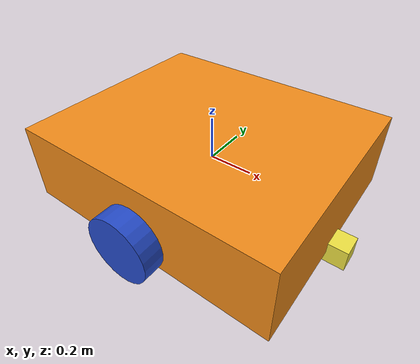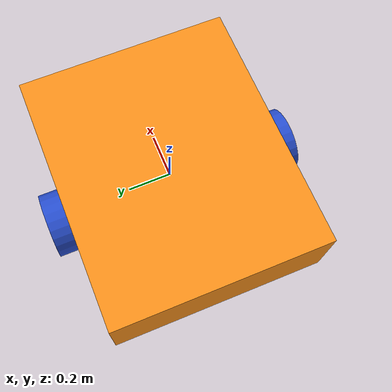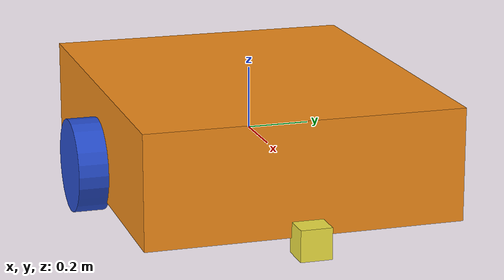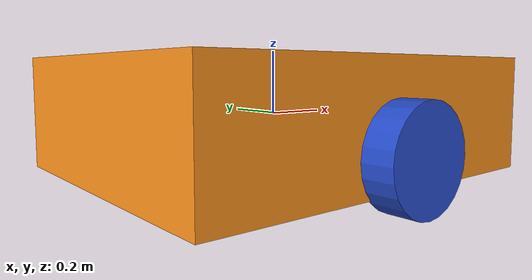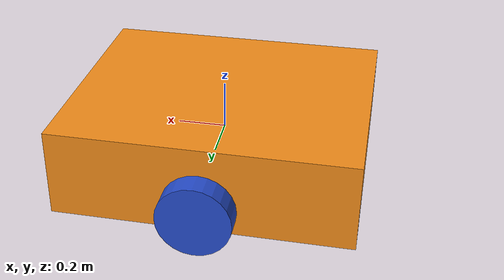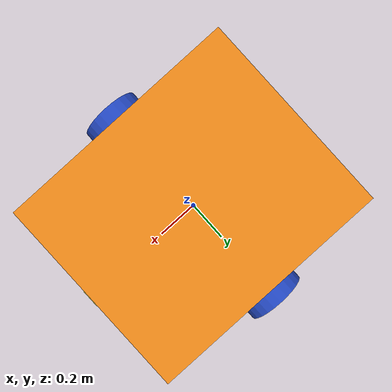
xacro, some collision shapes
<?xml version='1.0'?>

<robot name="myrobot" xmlns:xacro="http://www.ros.org/wiki/xacro">

  <xacro:property name="cameraSize" value="0.05"/>
  <xacro:property name="cameraMass" value="0.1"/>

  <xacro:include filename="$(find sandbox_robot_description)/urdf/mybot.gazebo" />
  <xacro:include filename="$(find sandbox_robot_description)/urdf/materials.xacro" />
  <xacro:include filename="$(find sandbox_robot_description)/urdf/macros.xacro" />

  <link name='base_link'>
    <pose>0 0 0.1 0 0 0</pose>

    <inertial>
      <mass value="1.0"/>
      <origin xyz="0.0 0 0.1" rpy=" 0 0 0"/>
      <inertia
          ixx="1" ixy="0" ixz="0"
          iyy="1" iyz="0"
          izz="1"
      />
    </inertial>

    <laser_retro>200</laser_retro>

    <collision name='collision'>
      <geometry>
        <box size="1.21 1.01 0.36"/>
      </geometry>
    </collision>

    <visual name='base_link_visual'>
      <origin xyz="0 0 0" rpy=" 0 0 0"/>
      <geometry>
        <box size="1.21 1.01 0.36"/>
      </geometry>
    </visual>

    <collision name='caster_collision'>
      <origin xyz="-0.45 0 -0.18" rpy=" 0 0 0"/>
      <geometry>
        <sphere radius="0.05"/>
      </geometry>
      <surface>
        <friction>
          <ode>
            <mu>1</mu>
            <mu2>1</mu2>
          </ode>
        </friction>
      </surface>
    </collision>

    <visual name='caster_visual'>
      <origin xyz="-0.45 0 -0.18" rpy=" 0 0 0"/>
      <geometry>
        <sphere radius="0.05"/>
      </geometry>
    </visual>

    <collision name='caster_front_collision'>
      <origin xyz="0.45 0 -0.18" rpy=" 0 0 0"/>
      <geometry>
        <sphere radius="0.05"/>
      </geometry>
      <surface>
        <friction>
          <ode>
            <mu>1</mu>
            <mu2>1</mu2>
          </ode>
        </friction>
      </surface>
    </collision>

    <visual name='caster_front_visual'>
      <origin xyz="0.45 0 -0.18" rpy=" 0 0 0"/>
      <geometry>
        <sphere radius="0.05"/>
      </geometry>
    </visual>

  </link>

  <link name="left_wheel">
    <!--origin xyz="0.1 0.13 0.1" rpy="0 1.5707 1.5707"/-->
    <collision name="collision">
      <origin xyz="0 0 0" rpy="0 1.5707 1.5707"/>
      <geometry>
        <cylinder radius="0.15" length="0.10"/>
      </geometry>
    </collision>
    <visual name="left_wheel_visual">
      <origin xyz="0 0 0" rpy="0 1.5707 1.5707"/>
      <geometry>
        <cylinder radius="0.15" length="0.10"/>
      </geometry>
    </visual>
    <inertial>
      <origin xyz="0 0 0" rpy="0 1.5707 1.5707"/>
      <mass value="1.0"/>
      <inertia
        ixx="1" ixy="0.0" ixz="0.0"
        iyy="1" iyz="0.0"
        izz="1"/>
    </inertial>
  </link>

  <link name="right_wheel">
    <!--origin xyz="0.1 -0.13 0.1" rpy="0 1.5707 1.5707"/-->
    <collision name="collision">
      <origin xyz="0 0 0" rpy="0 1.5707 1.5707"/>
      <geometry>
        <cylinder radius="0.15" length="0.10"/>
      </geometry>
    </collision>
    <visual name="right_wheel_visual">
      <origin xyz="0 0 0" rpy="0 1.5707 1.5707"/>
      <geometry>
        <cylinder radius="0.15" length="0.10"/>
      </geometry>
    </visual>
    <inertial>
      <origin xyz="0 0 0" rpy="0 1.5707 1.5707"/>
      <mass value="1.0"/>
      <inertia
        ixx="1" ixy="0.0" ixz="0.0"
        iyy="1" iyz="0.0"
        izz="1"/>
    </inertial>
  </link>

  <joint type="continuous" name="left_wheel_hinge">
    <origin xyz="0 0.55 -0.08" rpy="0 0 0"/>
    <!--origin xyz="0.1 0.13 0" rpy="0 1.5707 1.5707"/-->
    <child link="left_wheel"/>
    <parent link="base_link"/>
    <axis xyz="0 1 0" rpy="0 0 0"/>
    <limit effort="10000" velocity="1000"/>
    <joint_properties damping="1.0" friction="1.0"/>
  </joint>

  <joint type="continuous" name="right_wheel_hinge">
    <origin xyz="0 -0.55 -0.08" rpy="0 0 0"/>
    <!--origin xyz="0.1 -0.13 0" rpy="0 1.5707 1.5707"/-->
    <child link="right_wheel"/>
    <parent link="base_link"/>
    <axis xyz="0 1 0" rpy="0 0 0"/>
    <limit effort="10000" velocity="1000"/>
    <joint_properties damping="1.0" friction="1.0"/>
  </joint>

  <joint name="hokuyo_joint" type="fixed">
    <axis xyz="0 1 0" />
    <origin xyz="0.64 0 -0.18" rpy="0 0 0"/>
    <parent link="base_link"/>
    <child link="hokuyo"/>
  </joint>

  <!-- Hokuyo Laser -->
  <link name="hokuyo">
    <collision>
      <origin xyz="0 0 0" rpy="0 0 0"/>
      <geometry>
    <box size="0.1 0.1 0.1"/>
      </geometry>
    </collision>

    <laser_retro>100</laser_retro>

    <visual>
      <origin xyz="0 0 0" rpy="0 0 0"/>
      <geometry>
        <mesh filename="package://sandbox_robot_description/meshes/hokuyo.dae"/>
      </geometry>
    </visual>

    <inertial>
      <mass value="1e-5" />
      <origin xyz="0 0 0" rpy="0 0 0"/>
      <inertia ixx="1e-6" ixy="0" ixz="0" iyy="1e-6" iyz="0" izz="1e-6" />
    </inertial>
  </link>

</robot>
